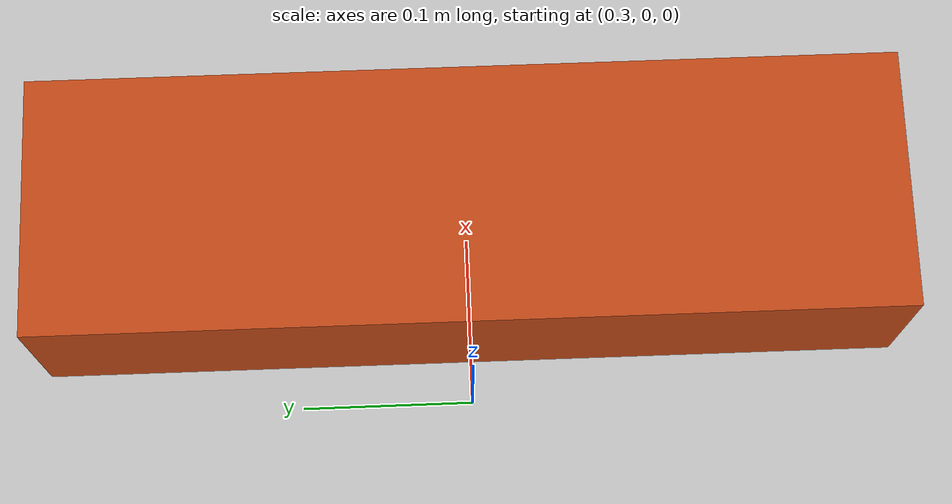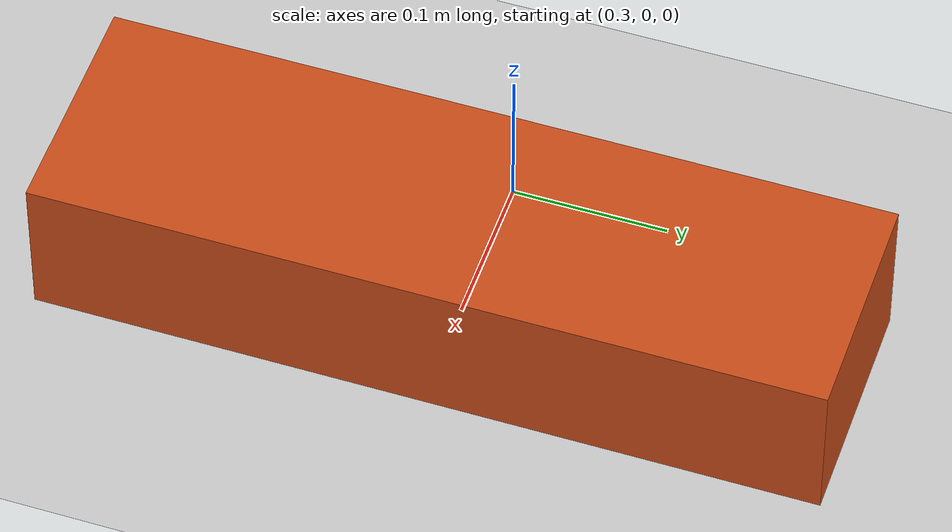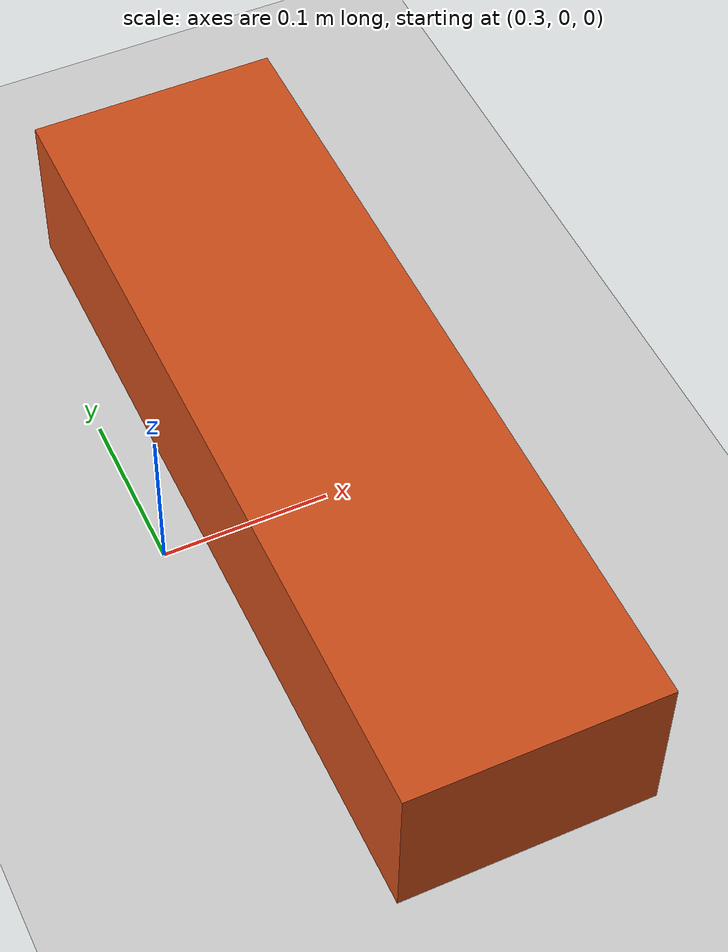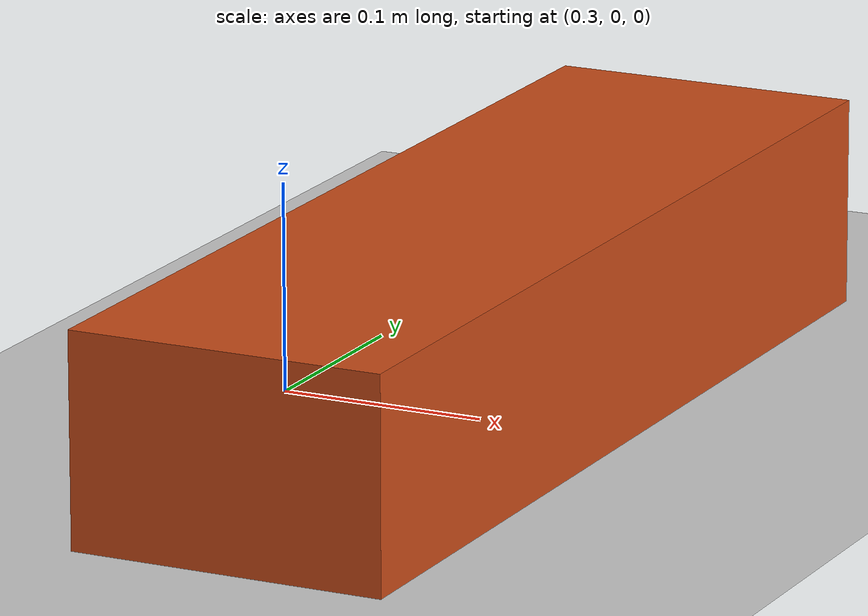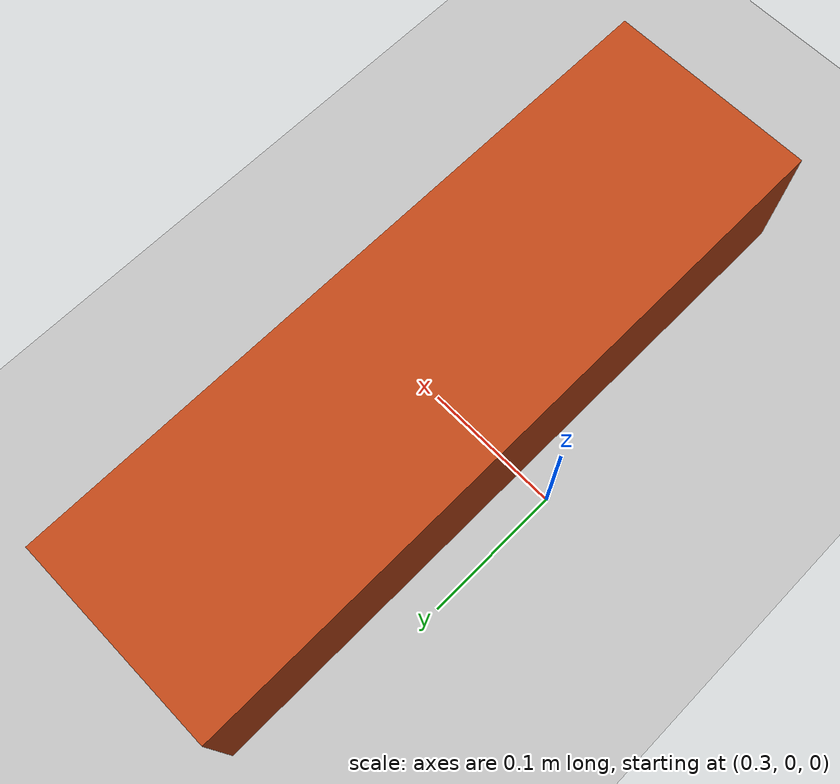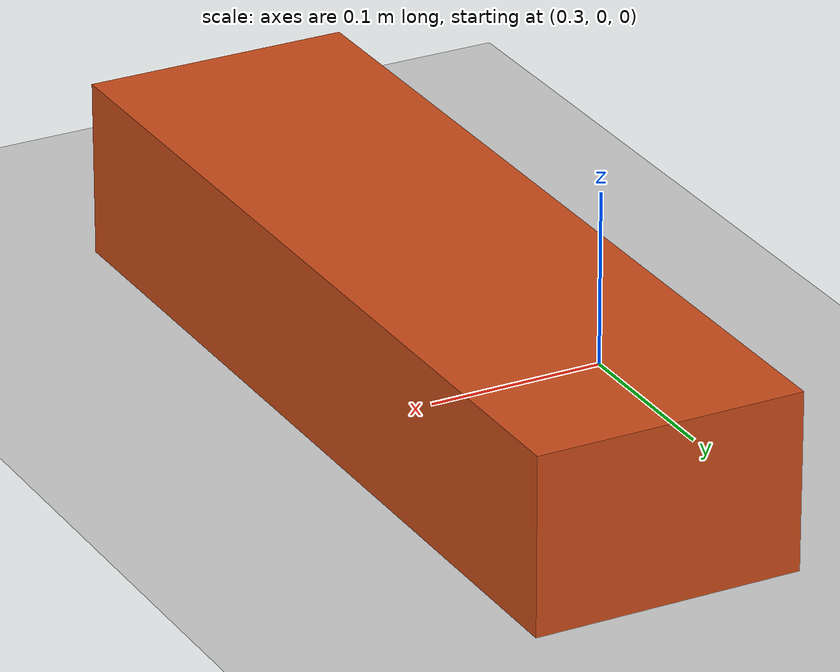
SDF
<?xml version="1.0" ?>
<sdf version="1.6">
  <world name="rescue_world">
    <include>
      <uri>model://sun</uri>
    </include>
    <include>
      <uri>model://ground_plane</uri>
    </include>

    <model name="brick_obstacle">
      <pose>0.4 0 0.05 0 0 0</pose>
      <static>true</static> <link name="link">
        <collision name="collision">
          <geometry>
            <box><size>0.15 0.5 0.1</size></box> </geometry>
        </collision>
        <visual name="visual">
          <geometry>
            <box><size>0.15 0.5 0.1</size></box>
          </geometry>
          <material>
            <ambient>0.8 0.3 0.1 1.0</ambient> </material>
        </visual>
      </link>
    </model>

  </world>
</sdf>
